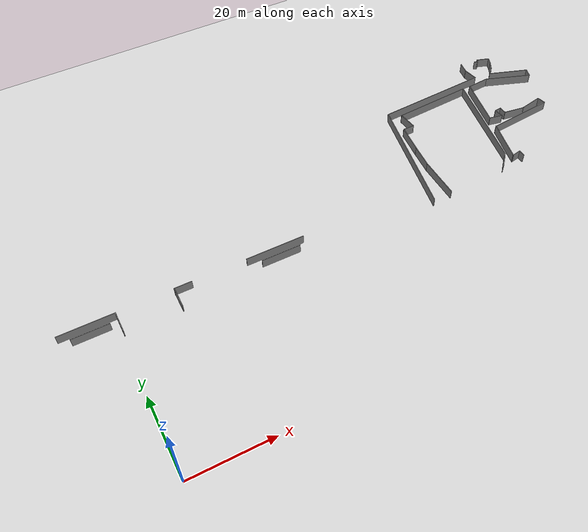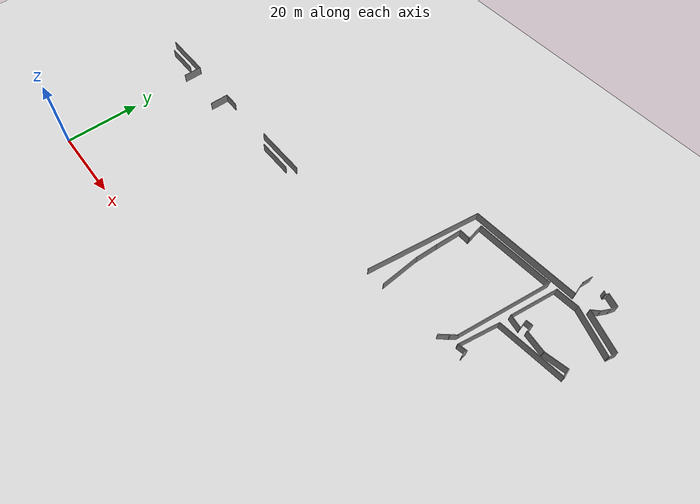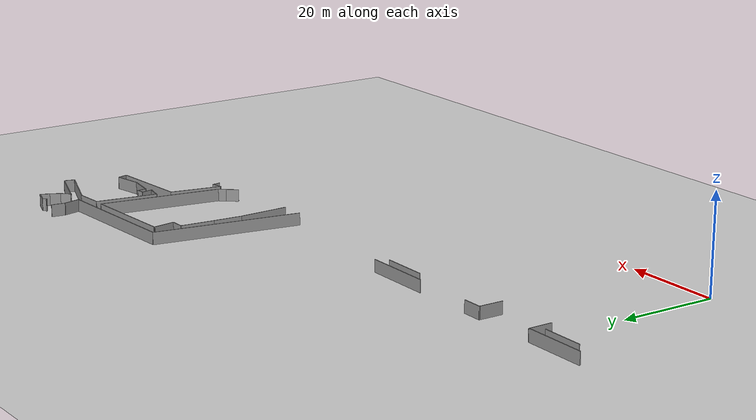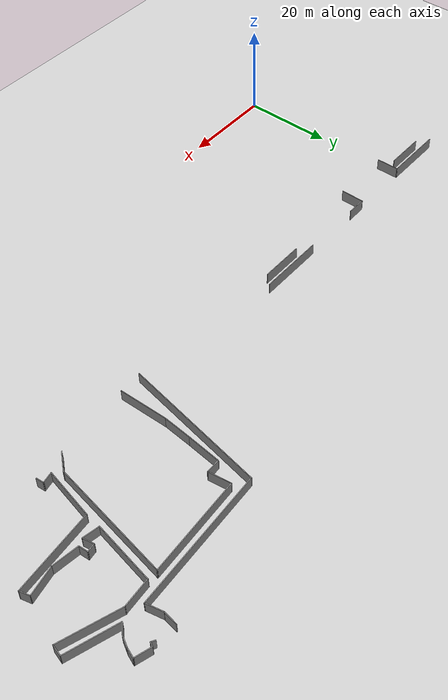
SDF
<sdf version="1.6">
 <world name="default">
  <model name="ground_plane">
   <static>1</static>
   <link name="link">
    <collision name="collision">
     <geometry><plane><normal>0 0 1</normal><size>100 100</size></plane></geometry>
     <surface><friction><ode><mu>100</mu><mu2>50</mu2></ode></friction></surface>
    </collision>
    <visual name="visual">
     <cast_shadows>0</cast_shadows>
     <geometry><plane><normal>0 0 1</normal><size>100 100</size></plane></geometry>
     <material>
      <script><uri>file://media/materials/scripts/gazebo.material</uri><name>Gazebo/Grey</name></script>
     </material>
    </visual>
   </link>
  </model>
  <model name="CMU">
   <pose>62.2844 43.535 0 0 -0 0</pose>
   <link name="Wall_128">
    <collision name="Wall_128_Collision">
     <geometry><box><size>1.70985 0.15 2.5</size></box></geometry>
     <pose>0 0 1.25 0 -0 0</pose>
    </collision>
    <visual name="Wall_128_Visual">
     <pose>0 0 1.25 0 -0 0</pose>
     <geometry><box><size>1.70985 0.15 2.5</size></box></geometry>
     <material>
      <script><uri>file://media/materials/scripts/gazebo.material</uri><name>Gazebo/Grey</name></script>
      <ambient>1 1 1 1</ambient>
     </material>
    </visual>
    <pose>43.1701 -4.77822 0 0 -0 1.67388</pose>
   </link>
   <link name="Wall_129">
    <collision name="Wall_129_Collision">
     <geometry><box><size>2.38497 0.15 2.5</size></box></geometry>
     <pose>0 0 1.25 0 -0 0</pose>
    </collision>
    <visual name="Wall_129_Visual">
     <pose>0 0 1.25 0 -0 0</pose>
     <geometry><box><size>2.38497 0.15 2.5</size></box></geometry>
     <material>
      <script><uri>file://media/materials/scripts/gazebo.material</uri><name>Gazebo/Grey</name></script>
      <ambient>1 1 1 1</ambient>
     </material>
    </visual>
    <pose>41.993 -4.21645 0 0 0 -2.94889</pose>
   </link>
   <link name="Wall_130">
    <collision name="Wall_130_Collision">
     <geometry><box><size>10.7896 0.15 2.5</size></box></geometry>
     <pose>0 0 1.25 0 -0 0</pose>
    </collision>
    <visual name="Wall_130_Visual">
     <pose>0 0 1.25 0 -0 0</pose>
     <geometry><box><size>10.7896 0.15 2.5</size></box></geometry>
     <material>
      <script><uri>file://media/materials/scripts/gazebo.material</uri><name>Gazebo/Grey</name></script>
      <ambient>1 1 1 1</ambient>
     </material>
    </visual>
    <pose>41.9395 0.786037 0 0 -0 1.3734</pose>
   </link>
   <link name="Wall_131">
    <collision name="Wall_131_Collision">
     <geometry><box><size>16.5902 0.15 2.5</size></box></geometry>
     <pose>0 0 1.25 0 -0 0</pose>
    </collision>
    <visual name="Wall_131_Visual">
     <pose>0 0 1.25 0 -0 0</pose>
     <geometry><box><size>16.5902 0.15 2.5</size></box></geometry>
     <material>
      <script><uri>file://media/materials/scripts/gazebo.material</uri><name>Gazebo/Grey</name></script>
      <ambient>1 1 1 1</ambient>
     </material>
    </visual>
    <pose>51.1687 6.75156 0 0 -0 0.091249</pose>
   </link>
   <link name="Wall_132">
    <collision name="Wall_132_Collision">
     <geometry><box><size>2.25 0.15 2.5</size></box></geometry>
     <pose>0 0 1.25 0 -0 0</pose>
    </collision>
    <visual name="Wall_132_Visual">
     <pose>0 0 1.25 0 -0 0</pose>
     <geometry><box><size>2.25 0.15 2.5</size></box></geometry>
     <material>
      <script><uri>file://media/materials/scripts/gazebo.material</uri><name>Gazebo/Grey</name></script>
      <ambient>1 1 1 1</ambient>
     </material>
    </visual>
    <pose>59.0828 8.51482 0 0 -0 1.8326</pose>
   </link>
   <link name="Wall_134">
    <collision name="Wall_134_Collision">
     <geometry><box><size>5.86977 0.15 2.5</size></box></geometry>
     <pose>0 0 1.25 0 -0 0</pose>
    </collision>
    <visual name="Wall_134_Visual">
     <pose>0 0 1.25 0 -0 0</pose>
     <geometry><box><size>5.86977 0.15 2.5</size></box></geometry>
     <material>
      <script><uri>file://media/materials/scripts/gazebo.material</uri><name>Gazebo/Grey</name></script>
      <ambient>1 1 1 1</ambient>
     </material>
    </visual>
    <pose>56.0064 8.9696 0 0 0 -2.9447</pose>
   </link>
   <link name="Wall_135">
    <collision name="Wall_135_Collision">
     <geometry><box><size>5.44648 0.15 2.5</size></box></geometry>
     <pose>0 0 1.25 0 -0 0</pose>
    </collision>
    <visual name="Wall_135_Visual">
     <pose>0 0 1.25 0 -0 0</pose>
     <geometry><box><size>5.44648 0.15 2.5</size></box></geometry>
     <material>
      <script><uri>file://media/materials/scripts/gazebo.material</uri><name>Gazebo/Grey</name></script>
      <ambient>1 1 1 1</ambient>
     </material>
    </visual>
    <pose>50.5802 8.78466 0 0 -0 2.9997</pose>
   </link>
   <link name="Wall_136">
    <collision name="Wall_136_Collision">
     <geometry><box><size>2.02945 0.15 2.5</size></box></geometry>
     <pose>0 0 1.25 0 -0 0</pose>
    </collision>
    <visual name="Wall_136_Visual">
     <pose>0 0 1.25 0 -0 0</pose>
     <geometry><box><size>2.02945 0.15 2.5</size></box></geometry>
     <material>
      <script><uri>file://media/materials/scripts/gazebo.material</uri><name>Gazebo/Grey</name></script>
      <ambient>1 1 1 1</ambient>
     </material>
    </visual>
    <pose>47.8783 10.0955 0 0 -0 1.6563</pose>
   </link>
   <link name="Wall_137">
    <collision name="Wall_137_Collision">
     <geometry><box><size>1.82233 0.15 2.5</size></box></geometry>
     <pose>0 0 1.25 0 -0 0</pose>
    </collision>
    <visual name="Wall_137_Visual">
     <pose>0 0 1.25 0 -0 0</pose>
     <geometry><box><size>1.82233 0.15 2.5</size></box></geometry>
     <material>
      <script><uri>file://media/materials/scripts/gazebo.material</uri><name>Gazebo/Grey</name></script>
      <ambient>1 1 1 1</ambient>
     </material>
    </visual>
    <pose>46.9687 10.9248 0 0 0 -3.01327</pose>
   </link>
   <link name="Wall_138">
    <collision name="Wall_138_Collision">
     <geometry><box><size>2.43751 0.15 2.5</size></box></geometry>
     <pose>0 0 1.25 0 -0 0</pose>
    </collision>
    <visual name="Wall_138_Visual">
     <pose>0 0 1.25 0 -0 0</pose>
     <geometry><box><size>2.43751 0.15 2.5</size></box></geometry>
     <material>
      <script><uri>file://media/materials/scripts/gazebo.material</uri><name>Gazebo/Grey</name></script>
      <ambient>1 1 1 1</ambient>
     </material>
    </visual>
    <pose>46.3535 9.69421 0 0 0 -1.38258</pose>
   </link>
   <link name="Wall_139">
    <collision name="Wall_139_Collision">
     <geometry><box><size>3.4762 0.15 2.5</size></box></geometry>
     <pose>0 0 1.25 0 -0 0</pose>
    </collision>
    <visual name="Wall_139_Visual">
     <pose>0 0 1.25 0 -0 0</pose>
     <geometry><box><size>3.4762 0.15 2.5</size></box></geometry>
     <material>
      <script><uri>file://media/materials/scripts/gazebo.material</uri><name>Gazebo/Grey</name></script>
      <ambient>1 1 1 1</ambient>
     </material>
    </visual>
    <pose>44.9356 8.89167 0 0 -0 2.94735</pose>
   </link>
   <link name="Wall_14">
    <collision name="Wall_14_Collision">
     <geometry><box><size>13.25 0.15 2.5</size></box></geometry>
     <pose>0 0 1.25 0 -0 0</pose>
    </collision>
    <visual name="Wall_14_Visual">
     <pose>0 0 1.25 0 -0 0</pose>
     <geometry><box><size>13.25 0.15 2.5</size></box></geometry>
     <material>
      <script><uri>file://media/materials/scripts/gazebo.material</uri><name>Gazebo/Grey</name></script>
      <ambient>1 1 1 1</ambient>
     </material>
    </visual>
    <pose>-68.0948 -3.11757 0 0 -0 0</pose>
   </link>
   <link name="Wall_140">
    <collision name="Wall_140_Collision">
     <geometry><box><size>12.8423 0.15 2.5</size></box></geometry>
     <pose>0 0 1.25 0 -0 0</pose>
    </collision>
    <visual name="Wall_140_Visual">
     <pose>0 0 1.25 0 -0 0</pose>
     <geometry><box><size>12.8423 0.15 2.5</size></box></geometry>
     <material>
      <script><uri>file://media/materials/scripts/gazebo.material</uri><name>Gazebo/Grey</name></script>
      <ambient>1 1 1 1</ambient>
     </material>
    </visual>
    <pose>44.3471 15.4725 0 0 -0 1.40565</pose>
   </link>
   <link name="Wall_141">
    <collision name="Wall_141_Collision">
     <geometry><box><size>5.78404 0.15 2.5</size></box></geometry>
     <pose>0 0 1.25 0 -0 0</pose>
    </collision>
    <visual name="Wall_141_Visual">
     <pose>0 0 1.25 0 -0 0</pose>
     <geometry><box><size>5.78404 0.15 2.5</size></box></geometry>
     <material>
      <script><uri>file://media/materials/scripts/gazebo.material</uri><name>Gazebo/Grey</name></script>
      <ambient>1 1 1 1</ambient>
     </material>
    </visual>
    <pose>48.1993 21.9463 0 0 -0 0.076044</pose>
   </link>
   <link name="Wall_142">
    <collision name="Wall_142_Collision">
     <geometry><box><size>12.0987 0.15 2.5</size></box></geometry>
     <pose>0 0 1.25 0 -0 0</pose>
    </collision>
    <visual name="Wall_142_Visual">
     <pose>0 0 1.25 0 -0 0</pose>
     <geometry><box><size>12.0987 0.15 2.5</size></box></geometry>
     <material>
      <script><uri>file://media/materials/scripts/gazebo.material</uri><name>Gazebo/Grey</name></script>
      <ambient>1 1 1 1</ambient>
     </material>
    </visual>
    <pose>56.6259 20.1272 0 0 0 -0.347241</pose>
   </link>
   <link name="Wall_143">
    <collision name="Wall_143_Collision">
     <geometry><box><size>2.3041 0.15 2.5</size></box></geometry>
     <pose>0 0 1.25 0 -0 0</pose>
    </collision>
    <visual name="Wall_143_Visual">
     <pose>0 0 1.25 0 -0 0</pose>
     <geometry><box><size>2.3041 0.15 2.5</size></box></geometry>
     <material>
      <script><uri>file://media/materials/scripts/gazebo.material</uri><name>Gazebo/Grey</name></script>
      <ambient>1 1 1 1</ambient>
     </material>
    </visual>
    <pose>62.5112 19.1374 0 0 -0 1.31979</pose>
   </link>
   <link name="Wall_144">
    <collision name="Wall_144_Collision">
     <geometry><box><size>10.4038 0.15 2.5</size></box></geometry>
     <pose>0 0 1.25 0 -0 0</pose>
    </collision>
    <visual name="Wall_144_Visual">
     <pose>0 0 1.25 0 -0 0</pose>
     <geometry><box><size>10.4038 0.15 2.5</size></box></geometry>
     <material>
      <script><uri>file://media/materials/scripts/gazebo.material</uri><name>Gazebo/Grey</name></script>
      <ambient>1 1 1 1</ambient>
     </material>
    </visual>
    <pose>57.9367 21.866 0 0 -0 2.80664</pose>
   </link>
   <link name="Wall_146">
    <collision name="Wall_146_Collision">
     <geometry><box><size>2.34425 0.15 2.5</size></box></geometry>
     <pose>0 0 1.25 0 -0 0</pose>
    </collision>
    <visual name="Wall_146_Visual">
     <pose>0 0 1.25 0 -0 0</pose>
     <geometry><box><size>2.34425 0.15 2.5</size></box></geometry>
     <material>
      <script><uri>file://media/materials/scripts/gazebo.material</uri><name>Gazebo/Grey</name></script>
      <ambient>1 1 1 1</ambient>
     </material>
    </visual>
    <pose>53.8706 24.3271 0 0 -0 0.785398</pose>
   </link>
   <link name="Wall_147">
    <collision name="Wall_147_Collision">
     <geometry><box><size>2.32789 0.15 2.5</size></box></geometry>
     <pose>0 0 1.25 0 -0 0</pose>
    </collision>
    <visual name="Wall_147_Visual">
     <pose>0 0 1.25 0 -0 0</pose>
     <geometry><box><size>2.32789 0.15 2.5</size></box></geometry>
     <material>
      <script><uri>file://media/materials/scripts/gazebo.material</uri><name>Gazebo/Grey</name></script>
      <ambient>1 1 1 1</ambient>
     </material>
    </visual>
    <pose>55.1546 26.066 0 0 -0 1.08517</pose>
   </link>
   <link name="Wall_148">
    <collision name="Wall_148_Collision">
     <geometry><box><size>2.07906 0.15 2.5</size></box></geometry>
     <pose>0 0 1.25 0 -0 0</pose>
    </collision>
    <visual name="Wall_148_Visual">
     <pose>0 0 1.25 0 -0 0</pose>
     <geometry><box><size>2.07906 0.15 2.5</size></box></geometry>
     <material>
      <script><uri>file://media/materials/scripts/gazebo.material</uri><name>Gazebo/Grey</name></script>
      <ambient>1 1 1 1</ambient>
     </material>
    </visual>
    <pose>55.9839 27.9386 0 0 -0 1.2315</pose>
   </link>
   <link name="Wall_149">
    <collision name="Wall_149_Collision">
     <geometry><box><size>3.41541 0.15 2.5</size></box></geometry>
     <pose>0 0 1.25 0 -0 0</pose>
    </collision>
    <visual name="Wall_149_Visual">
     <pose>0 0 1.25 0 -0 0</pose>
     <geometry><box><size>3.41541 0.15 2.5</size></box></geometry>
     <material>
      <script><uri>file://media/materials/scripts/gazebo.material</uri><name>Gazebo/Grey</name></script>
      <ambient>1 1 1 1</ambient>
     </material>
    </visual>
    <pose>54.7533 29.3564 0 0 -0 2.82502</pose>
   </link>
   <link name="Wall_15">
    <collision name="Wall_15_Collision">
     <geometry><box><size>4.99676 0.15 2.5</size></box></geometry>
     <pose>0 0 1.25 0 -0 0</pose>
    </collision>
    <visual name="Wall_15_Visual">
     <pose>0 0 1.25 0 -0 0</pose>
     <geometry><box><size>4.99676 0.15 2.5</size></box></geometry>
     <material>
      <script><uri>file://media/materials/scripts/gazebo.material</uri><name>Gazebo/Grey</name></script>
      <ambient>1 1 1 1</ambient>
     </material>
    </visual>
    <pose>-61.5624 -5.5407 0 0 0 -1.56354</pose>
   </link>
   <link name="Wall_150">
    <collision name="Wall_150_Collision">
     <geometry><box><size>0.987447 0.15 2.5</size></box></geometry>
     <pose>0 0 1.25 0 -0 0</pose>
    </collision>
    <visual name="Wall_150_Visual">
     <pose>0 0 1.25 0 -0 0</pose>
     <geometry><box><size>0.987447 0.15 2.5</size></box></geometry>
     <material>
      <script><uri>file://media/materials/scripts/gazebo.material</uri><name>Gazebo/Grey</name></script>
      <ambient>1 1 1 1</ambient>
     </material>
    </visual>
    <pose>53.0145 29.4901 0 0 0 -2.03444</pose>
   </link>
   <link name="Wall_151">
    <collision name="Wall_151_Collision">
     <geometry><box><size>0.96668 0.15 2.5</size></box></geometry>
     <pose>0 0 1.25 0 -0 0</pose>
    </collision>
    <visual name="Wall_151_Visual">
     <pose>0 0 1.25 0 -0 0</pose>
     <geometry><box><size>0.96668 0.15 2.5</size></box></geometry>
     <material>
      <script><uri>file://media/materials/scripts/gazebo.material</uri><name>Gazebo/Grey</name></script>
      <ambient>1 1 1 1</ambient>
     </material>
    </visual>
    <pose>52.4795 29.3296 0 0 -0 2.58994</pose>
   </link>
   <link name="Wall_17">
    <collision name="Wall_17_Collision">
     <geometry><box><size>5.08355 0.15 2.5</size></box></geometry>
     <pose>0 0 1.25 0 -0 0</pose>
    </collision>
    <visual name="Wall_17_Visual">
     <pose>0 0 1.25 0 -0 0</pose>
     <geometry><box><size>5.08355 0.15 2.5</size></box></geometry>
     <material>
      <script><uri>file://media/materials/scripts/gazebo.material</uri><name>Gazebo/Grey</name></script>
      <ambient>1 1 1 1</ambient>
     </material>
    </visual>
    <pose>-48.1773 -5.4973 0 0 -0 1.56367</pose>
   </link>
   <link name="Wall_18">
    <collision name="Wall_18_Collision">
     <geometry><box><size>4.25 0.15 2.5</size></box></geometry>
     <pose>0 0 1.25 0 -0 0</pose>
    </collision>
    <visual name="Wall_18_Visual">
     <pose>0 0 1.25 0 -0 0</pose>
     <geometry><box><size>4.25 0.15 2.5</size></box></geometry>
     <material>
      <script><uri>file://media/materials/scripts/gazebo.material</uri><name>Gazebo/Grey</name></script>
      <ambient>1 1 1 1</ambient>
     </material>
    </visual>
    <pose>-46.1448 -3.03078 0 0 -0 0</pose>
   </link>
   <link name="Wall_199">
    <collision name="Wall_199_Collision">
     <geometry><box><size>2.79181 0.15 2.5</size></box></geometry>
     <pose>0 0 1.25 0 -0 0</pose>
    </collision>
    <visual name="Wall_199_Visual">
     <pose>0 0 1.25 0 -0 0</pose>
     <geometry><box><size>2.79181 0.15 2.5</size></box></geometry>
     <material>
      <script><uri>file://media/materials/scripts/gazebo.material</uri><name>Gazebo/Grey</name></script>
      <ambient>1 1 1 1</ambient>
     </material>
    </visual>
    <pose>48.1017 28.9263 0 0 0 -1.70512</pose>
   </link>
   <link name="Wall_201">
    <collision name="Wall_201_Collision">
     <geometry><box><size>3.56545 0.15 2.5</size></box></geometry>
     <pose>0 0 1.25 0 -0 0</pose>
    </collision>
    <visual name="Wall_201_Visual">
     <pose>0 0 1.25 0 -0 0</pose>
     <geometry><box><size>3.56545 0.15 2.5</size></box></geometry>
     <material>
      <script><uri>file://media/materials/scripts/gazebo.material</uri><name>Gazebo/Grey</name></script>
      <ambient>1 1 1 1</ambient>
     </material>
    </visual>
    <pose>48.314 25.7422 0 0 0 -1.34089</pose>
   </link>
   <link name="Wall_202">
    <collision name="Wall_202_Collision">
     <geometry><box><size>28.1424 0.15 2.5</size></box></geometry>
     <pose>0 0 1.25 0 -0 0</pose>
    </collision>
    <visual name="Wall_202_Visual">
     <pose>0 0 1.25 0 -0 0</pose>
     <geometry><box><size>28.1424 0.15 2.5</size></box></geometry>
     <material>
      <script><uri>file://media/materials/scripts/gazebo.material</uri><name>Gazebo/Grey</name></script>
      <ambient>1 1 1 1</ambient>
     </material>
    </visual>
    <pose>34.7286 23.3011 0 0 0 -3.08595</pose>
   </link>
   <link name="Wall_203">
    <collision name="Wall_203_Collision">
     <geometry><box><size>30.6473 0.15 2.5</size></box></geometry>
     <pose>0 0 1.25 0 -0 0</pose>
    </collision>
    <visual name="Wall_203_Visual">
     <pose>0 0 1.25 0 -0 0</pose>
     <geometry><box><size>30.6473 0.15 2.5</size></box></geometry>
     <material>
      <script><uri>file://media/materials/scripts/gazebo.material</uri><name>Gazebo/Grey</name></script>
      <ambient>1 1 1 1</ambient>
     </material>
    </visual>
    <pose>18.2604 7.46783 0 0 0 -1.73036</pose>
   </link>
   <link name="Wall_212">
    <collision name="Wall_212_Collision">
     <geometry><box><size>2.65963 0.15 2.5</size></box></geometry>
     <pose>0 0 1.25 0 -0 0</pose>
    </collision>
    <visual name="Wall_212_Visual">
     <pose>0 0 1.25 0 -0 0</pose>
     <geometry><box><size>2.65963 0.15 2.5</size></box></geometry>
     <material>
      <script><uri>file://media/materials/scripts/gazebo.material</uri><name>Gazebo/Grey</name></script>
      <ambient>1 1 1 1</ambient>
     </material>
    </visual>
    <pose>37.5589 -5.2494 0 0 -0 0.865228</pose>
   </link>
   <link name="Wall_213">
    <collision name="Wall_213_Collision">
     <geometry><box><size>1.90757 0.15 2.5</size></box></geometry>
     <pose>0 0 1.25 0 -0 0</pose>
    </collision>
    <visual name="Wall_213_Visual">
     <pose>0 0 1.25 0 -0 0</pose>
     <geometry><box><size>1.90757 0.15 2.5</size></box></geometry>
     <material>
      <script><uri>file://media/materials/scripts/gazebo.material</uri><name>Gazebo/Grey</name></script>
      <ambient>1 1 1 1</ambient>
     </material>
    </visual>
    <pose>38.9386 -3.62199 0 0 -0 0.870903</pose>
   </link>
   <link name="Wall_214">
    <collision name="Wall_214_Collision">
     <geometry><box><size>25.2189 0.15 2.5</size></box></geometry>
     <pose>0 0 1.25 0 -0 0</pose>
    </collision>
    <visual name="Wall_214_Visual">
     <pose>0 0 1.25 0 -0 0</pose>
     <geometry><box><size>25.2189 0.15 2.5</size></box></geometry>
     <material>
      <script><uri>file://media/materials/scripts/gazebo.material</uri><name>Gazebo/Grey</name></script>
      <ambient>1 1 1 1</ambient>
     </material>
    </visual>
    <pose>41.3798 9.43269 0 0 -0 1.41493</pose>
   </link>
   <link name="Wall_216">
    <collision name="Wall_216_Collision">
     <geometry><box><size>19.9278 0.15 2.5</size></box></geometry>
     <pose>0 0 1.25 0 -0 0</pose>
    </collision>
    <visual name="Wall_216_Visual">
     <pose>0 0 1.25 0 -0 0</pose>
     <geometry><box><size>19.9278 0.15 2.5</size></box></geometry>
     <material>
      <script><uri>file://media/materials/scripts/gazebo.material</uri><name>Gazebo/Grey</name></script>
      <ambient>1 1 1 1</ambient>
     </material>
    </visual>
    <pose>33.455 21.2137 0 0 0 -3.08074</pose>
   </link>
   <link name="Wall_217">
    <collision name="Wall_217_Collision">
     <geometry><box><size>4.80332 0.15 2.5</size></box></geometry>
     <pose>0 0 1.25 0 -0 0</pose>
    </collision>
    <visual name="Wall_217_Visual">
     <pose>0 0 1.25 0 -0 0</pose>
     <geometry><box><size>4.80332 0.15 2.5</size></box></geometry>
     <material>
      <script><uri>file://media/materials/scripts/gazebo.material</uri><name>Gazebo/Grey</name></script>
      <ambient>1 1 1 1</ambient>
     </material>
    </visual>
    <pose>23.9382 18.3127 0 0 0 -1.41815</pose>
   </link>
   <link name="Wall_218">
    <collision name="Wall_218_Collision">
     <geometry><box><size>2.98028 0.15 2.5</size></box></geometry>
     <pose>0 0 1.25 0 -0 0</pose>
    </collision>
    <visual name="Wall_218_Visual">
     <pose>0 0 1.25 0 -0 0</pose>
     <geometry><box><size>2.98028 0.15 2.5</size></box></geometry>
     <material>
      <script><uri>file://media/materials/scripts/gazebo.material</uri><name>Gazebo/Grey</name></script>
      <ambient>1 1 1 1</ambient>
     </material>
    </visual>
    <pose>22.8768 15.9777 0 0 0 -3.1166</pose>
   </link>
   <link name="Wall_219">
    <collision name="Wall_219_Collision">
     <geometry><box><size>7.2543 0.15 2.5</size></box></geometry>
     <pose>0 0 1.25 0 -0 0</pose>
    </collision>
    <visual name="Wall_219_Visual">
     <pose>0 0 1.25 0 -0 0</pose>
     <geometry><box><size>7.2543 0.15 2.5</size></box></geometry>
     <material>
      <script><uri>file://media/materials/scripts/gazebo.material</uri><name>Gazebo/Grey</name></script>
      <ambient>1 1 1 1</ambient>
     </material>
    </visual>
    <pose>21.1432 12.4045 0 0 0 -1.66056</pose>
   </link>
   <link name="Wall_220">
    <collision name="Wall_220_Collision">
     <geometry><box><size>6.03816 0.15 2.5</size></box></geometry>
     <pose>0 0 1.25 0 -0 0</pose>
    </collision>
    <visual name="Wall_220_Visual">
     <pose>0 0 1.25 0 -0 0</pose>
     <geometry><box><size>6.03816 0.15 2.5</size></box></geometry>
     <material>
      <script><uri>file://media/materials/scripts/gazebo.material</uri><name>Gazebo/Grey</name></script>
      <ambient>1 1 1 1</ambient>
     </material>
    </visual>
    <pose>20.6126 5.93022 0 0 0 -1.64296</pose>
   </link>
   <link name="Wall_221">
    <collision name="Wall_221_Collision">
     <geometry><box><size>10.4159 0.15 2.5</size></box></geometry>
     <pose>0 0 1.25 0 -0 0</pose>
    </collision>
    <visual name="Wall_221_Visual">
     <pose>0 0 1.25 0 -0 0</pose>
     <geometry><box><size>10.4159 0.15 2.5</size></box></geometry>
     <material>
      <script><uri>file://media/materials/scripts/gazebo.material</uri><name>Gazebo/Grey</name></script>
      <ambient>1 1 1 1</ambient>
     </material>
    </visual>
    <pose>20.5772 -2.20684 0 0 0 -1.53633</pose>
   </link>
   <link name="Wall_24">
    <collision name="Wall_24_Collision">
     <geometry><box><size>14.25 0.15 2.5</size></box></geometry>
     <pose>0 0 1.25 0 -0 0</pose>
    </collision>
    <visual name="Wall_24_Visual">
     <pose>0 0 1.25 0 -0 0</pose>
     <geometry><box><size>14.25 0.15 2.5</size></box></geometry>
     <material>
      <script><uri>file://media/materials/scripts/gazebo.material</uri><name>Gazebo/Grey</name></script>
      <ambient>1 1 1 1</ambient>
     </material>
    </visual>
    <pose>-23.83 -3.07311 0 0 -0 0</pose>
   </link>
   <link name="Wall_36">
    <collision name="Wall_36_Collision">
     <geometry><box><size>9.5 0.15 2.5</size></box></geometry>
     <pose>0 0 1.25 0 -0 0</pose>
    </collision>
    <visual name="Wall_36_Visual">
     <pose>0 0 1.25 0 -0 0</pose>
     <geometry><box><size>9.5 0.15 2.5</size></box></geometry>
     <material>
      <script><uri>file://media/materials/scripts/gazebo.material</uri><name>Gazebo/Grey</name></script>
      <ambient>1 1 1 1</ambient>
     </material>
    </visual>
    <pose>-23.2682 -5.0798 0 0 -0 0</pose>
   </link>
   <link name="Wall_62">
    <collision name="Wall_62_Collision">
     <geometry><box><size>8.70437 0.15 2.5</size></box></geometry>
     <pose>0 0 1.25 0 -0 0</pose>
    </collision>
    <visual name="Wall_62_Visual">
     <pose>0 0 1.25 0 -0 0</pose>
     <geometry><box><size>8.70437 0.15 2.5</size></box></geometry>
     <material>
      <script><uri>file://media/materials/scripts/gazebo.material</uri><name>Gazebo/Grey</name></script>
      <ambient>1 1 1 1</ambient>
     </material>
    </visual>
    <pose>-67.7521 -5.1311 0 0 -0 0</pose>
   </link>
   <static>1</static>
  </model>
 </world>
</sdf>
